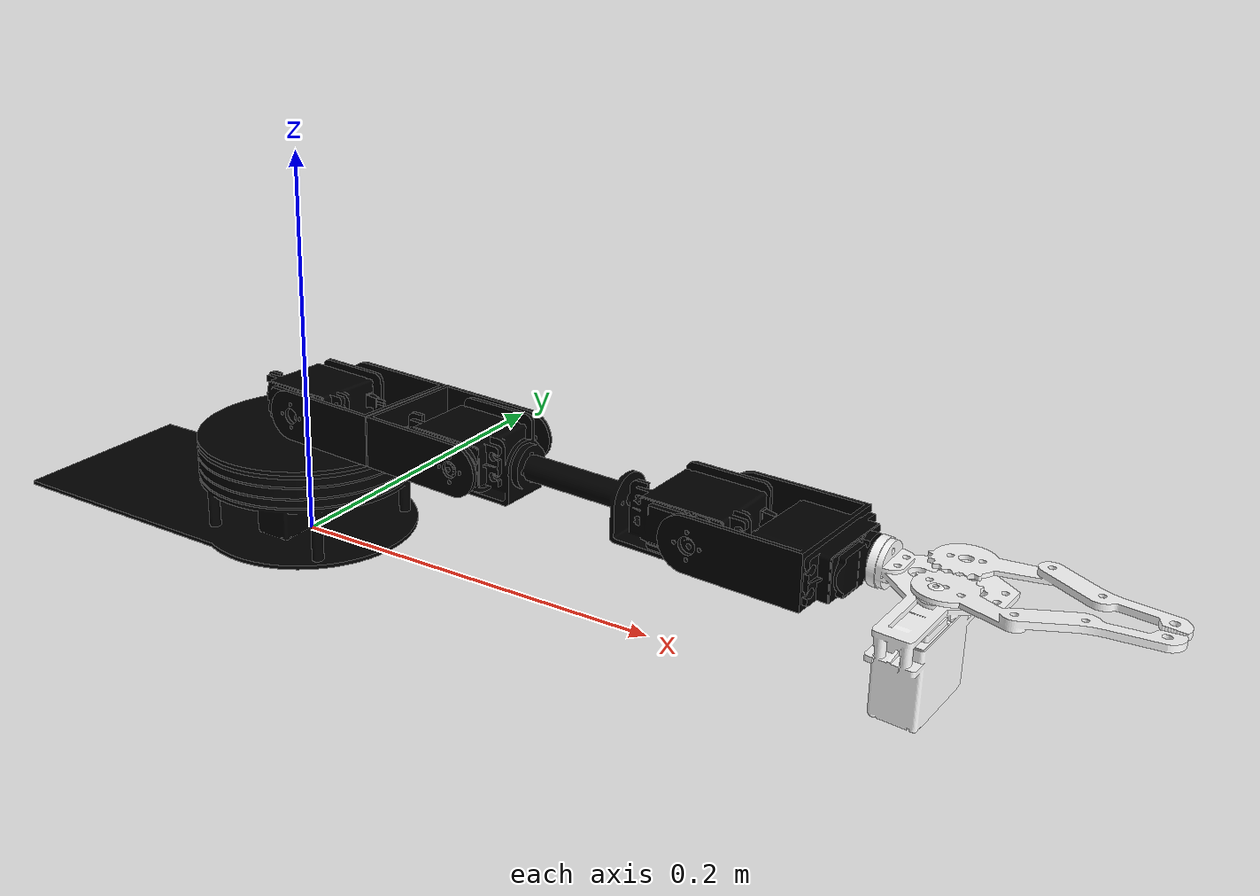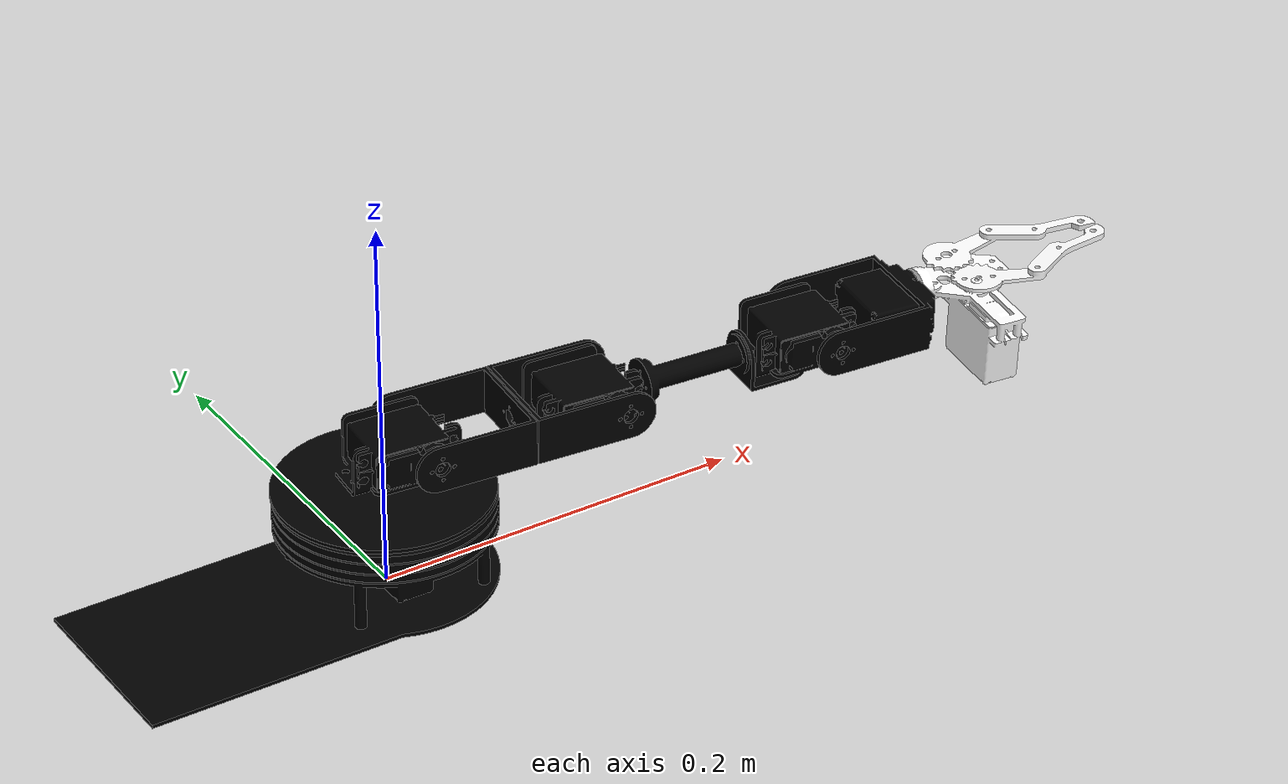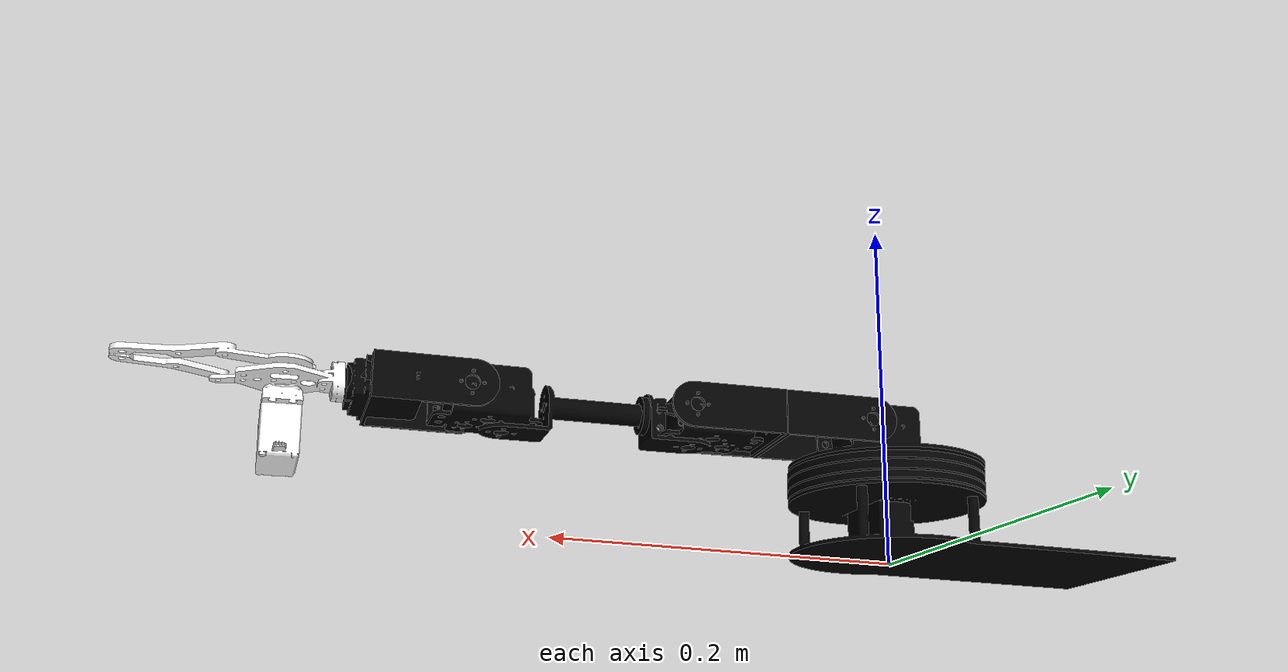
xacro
<?xml version="1.0" ?>
<robot xmlns:xacro="http://ros.org/wiki/xacro">

  <xacro:include filename="inertial_macros.xacro"/>

  <!-- World link -->
  <link name="world"/>

  <!-- Fix base_link to Gazebo world -->
  <joint name="fixed" type="fixed">
    <parent link="world"/>
    <child link="base_link"/>
  </joint>

  <!-- Base link  -->
  <link name="base_link"/>

  <joint name="base_plate_joint" type="fixed">
    <parent link="base_link"/>
    <child link="base_plate"/>
    <origin xyz="0 0 0"/>
  </joint>

  <!-- Base plate -->
  <link name="base_plate">
    <visual>
      <origin xyz="0 0 0.001"/>
        <geometry>
          <mesh filename="package://akabot_description/meshes/base_cylinder.stl" scale ="0.00001 0.00001 0.00001"/>
        </geometry>
        <material name="black">
          <color rgba="0 0 0 1"/>
        </material>
    </visual>
	  <collision>
      <origin xyz="0 0 0.001"/>
        <geometry>
          <mesh filename="package://akabot_description/meshes/base_cylinder.stl" scale ="0.00001 0.00001 0.00001"/>
        </geometry>
    </collision>

    <xacro:box_inertia mass="0.527" length="0.215" width="0.112" height="0.052">
      <origin xyz="0 0 0" rpy="0 0 0"/>
    </xacro:box_inertia>
  </link>

  <joint name="top_plate_joint" type="revolute">
    <parent link="base_plate"/>
    <child link="top_plate"/>
    <origin rpy="0 0 1.5" xyz="0 0 0.048"/>
    <axis xyz="0 0 1" />
    <limit effort="1000.0" lower="1.56" upper="4.68" velocity="1.0" />
  </joint>

  <!-- Top plate -->
  <link name="top_plate">
	  <visual>
      <origin xyz="0 0 0"/>
        <geometry>
          <mesh filename="package://akabot_description/meshes/top_plate.stl" scale ="0.0001 0.0001 0.0001"/>
        </geometry>
        <material name="black"/>
    </visual>
	  <collision>
      <geometry>
        <mesh filename="package://akabot_description/meshes/top_plate.stl" scale ="0.0001 0.0001 0.0001"/>
      </geometry>
    </collision>

    <xacro:cylinder_inertia mass="0.115" length="0.002" radius="0.055">
      <origin xyz="0 0 0" rpy="0 0 0"/>
    </xacro:cylinder_inertia>
  </link>

  <joint name="lower_arm_joint" type="revolute">
    <parent link="top_plate"/>
    <child link="lower_arm"/>
    <origin xyz="0 0.019 0.028"/>
    <axis xyz="1 0 0" />
    <limit effort="1000.0" lower="0.0" upper="3.12" velocity="1.0" />
  </joint>

  <!-- Lower arm -->
  <link name="lower_arm">
    <visual>
      <geometry>
        <mesh filename="package://akabot_description/meshes/lower_arm.stl" scale ="0.0001 0.0001 0.0001"/>
      </geometry>
      <material name="black"/>
    </visual>
    <collision>
      <origin xyz="0 0 0"/>
      <geometry>
        <mesh filename="package://akabot_description/meshes/lower_arm.stl" scale ="0.0001 0.0001 0.0001"/>
      </geometry>
    </collision>

    <xacro:box_inertia mass="0.047" length="0.13" width="0.056" height="0.025">
      <origin xyz="0 0 0" rpy="0 0 0"/>
    </xacro:box_inertia>
  </link>

  <joint name="upper_arm_joint" type="revolute">
    <parent link="lower_arm"/>
    <child link="upper_arm"/>
    <origin xyz="-0.025 0.1 0"/>
    <axis xyz="1 0 0" />
    <limit effort="1000.0" lower="-1.7" upper="1.7" velocity="1.0" />
  </joint>

  <!-- Upper arm -->
  <link name="upper_arm">
    <visual>
      <origin rpy="0 1.59 0" xyz="0 0 0"/>
      <geometry>
        <mesh filename="package://akabot_description/meshes/upper_arm.stl" scale ="0.0001 0.0001 0.0001"/>
      </geometry>
      <material name="black"/>
    </visual>
    <collision>
      <origin rpy="0 1.59 0" xyz="0 0 0"/>
      <geometry>
        <mesh filename="package://akabot_description/meshes/upper_arm.stl" scale ="0.0001 0.0001 0.0001"/>
      </geometry>
    </collision>

    <xacro:box_inertia mass="0.105" length="0.185" width="0.036" height="0.025">
      <origin xyz="0 0 0" rpy="0 0 0"/>
    </xacro:box_inertia>
  </link>

  <joint name="wrist_joint" type="revolute">
    <parent link="upper_arm"/>
    <child link="wrist"/>
    <origin xyz="0.011 0.125 0"/>
    <axis xyz="1 0 0" />
    <limit effort="1000.0" lower="-1.7" upper="1.7" velocity="1.0" />
  </joint>

  <!-- Wrist -->
  <link name="wrist">
    <visual>
      <geometry>
        <mesh filename="package://akabot_description/meshes/wrist.stl" scale ="0.0001 0.0001 0.0001"/>
      </geometry>
      <material name="black"/>
    </visual>
    <collision>
      <origin rpy="0 0 0" xyz="0 0 0"/>
      <geometry>
        <mesh filename="package://akabot_description/meshes/wrist.stl" scale ="0.0001 0.0001 0.0001"/>
      </geometry>
    </collision>

    <xacro:box_inertia mass="0.082" length="0.065" width="0.057" height="0.025">
      <origin xyz="0 0 0" rpy="0 0 0"/>
    </xacro:box_inertia>
  </link>

  <joint name="claw_base_joint" type="revolute">
    <axis xyz="0 1 0" />
    <limit effort="1000.0" lower="-3.17" upper="0.0" velocity="1.0" />
    <parent link="wrist"/>
    <child link="claw_base"/>
    <origin xyz="0 0.063 0"/>
  </joint>

  <!-- Claw base -->
  <link name="claw_base">
    <visual>
      <origin rpy="0 3.18 0" xyz="0 0 0"/>
      <geometry>
        <mesh filename="package://akabot_description/meshes/claw_base.stl" scale ="0.0001 0.0001 0.0001"/>
      </geometry>
      <material name="white">
        <color rgba="1 1 1 1"/>
      </material>
    </visual>
    <collision>
      <origin rpy="0 3.18 0" xyz="0 0 0"/>
      <geometry>
        <mesh filename="package://akabot_description/meshes/claw_base.stl" scale ="0.0001 0.0001 0.0001"/>
      </geometry>
    </collision>

    <xacro:box_inertia mass="0.079" length="0.07" width="0.05" height="0.015">
      <origin xyz="0 0 0" rpy="0 0 0"/>
    </xacro:box_inertia>
  </link>

  <joint name="right_claw_joint" type="revolute">
    <parent link="claw_base"/>
    <child link="right_claw"/>
    <origin rpy="0 0 -0.31" xyz="0.011 0.0335 0.00155"/>
    <axis xyz="0 0 1" />
    <limit effort="1000.0" lower="-0.5" upper="0.0" velocity="1.0" />
  </joint>

  <!-- Right claw  -->
  <link name="right_claw">
    <visual>
      <origin rpy="0 0 0" xyz="0 0 0"/>
      <geometry>
        <mesh filename="package://akabot_description/meshes/right_claw.stl" scale ="0.0001 0.0001 0.0001"/>
      </geometry>
      <material name="white"/>
    </visual>
    <collision>
      <origin rpy="0 0 0" xyz="0 0 0"/>
      <geometry>
        <mesh filename="package://akabot_description/meshes/right_claw.stl" scale ="0.0001 0.0001 0.0001"/>
      </geometry>
    </collision>

    <xacro:box_inertia mass="0.019" length="0.1" width="0.01" height="0.012">
      <origin xyz="0 0 0" rpy="0 0 0"/>
    </xacro:box_inertia>
  </link>

  <!-- Left claw -->
  <link name="left_claw">
    <visual>
      <origin rpy="0 0 0" xyz="0 0 0"/>
      <geometry>
        <mesh filename="package://akabot_description/meshes/left_claw.stl" scale ="0.0001 0.0001 0.0001"/>
      </geometry>
      <material name="white"/>
    </visual>
    <collision>
      <origin rpy="0 0 0" xyz="0 0 0"/>
      <geometry>
        <mesh filename="package://akabot_description/meshes/left_claw.stl" scale ="0.0001 0.0001 0.0001"/>
      </geometry>
    </collision>

    <xacro:box_inertia mass="0.019" length="0.1" width="0.01" height="0.012">
      <origin xyz="0 0 0" rpy="0 0 0"/>
    </xacro:box_inertia>
  </link>

  <joint name="left_claw_joint" type="revolute">
    <parent link="claw_base"/>
    <child link="left_claw"/>
    <origin rpy="0 0 0.22" xyz="-0.016 0.030 0"/>
    <axis xyz="0 0 1" />
    <limit effort="1000.0" lower="0.0" upper="0.5" velocity="1.0" />
    <mimic joint="right_claw_joint" multiplier="-1" offset="0" />
  </joint>

</robot>

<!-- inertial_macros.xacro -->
<robot xmlns:xacro="http://ros.org/wiki/xacro">

    <!-- Some standard inertial calculations, obtained from: https://en.wikipedia.org/wiki/List_of_moments_of_inertia -->
    <xacro:macro name="box_inertia" params="mass length width height *origin">
        <inertial>
            <xacro:insert_block name="origin"/>
            <mass value="${mass}"/>
            <inertia ixx="${(mass/12) * (width*width + height*height)}" ixy="0.0" ixz="0.0"
                    iyy="${(mass/12) * (length*length + height*height)}" iyz="0.0"
                    izz="${(mass/12) * (length*length + width*width)}"/>
        </inertial>
    </xacro:macro>

    <xacro:macro name="cylinder_inertia" params="mass length radius *origin">
        <inertial>
            <xacro:insert_block name="origin"/>
            <mass value="${mass}" />
            <inertia ixx="${(1/12) * mass * (3*radius*radius + length*length)}" ixy="0.0" ixz="0.0"
                    iyy="${(1/12) * mass * (3*radius*radius + length*length)}" iyz="0.0"
                    izz="${(1/2) * mass * (radius*radius)}" />
        </inertial>
    </xacro:macro>

</robot>
